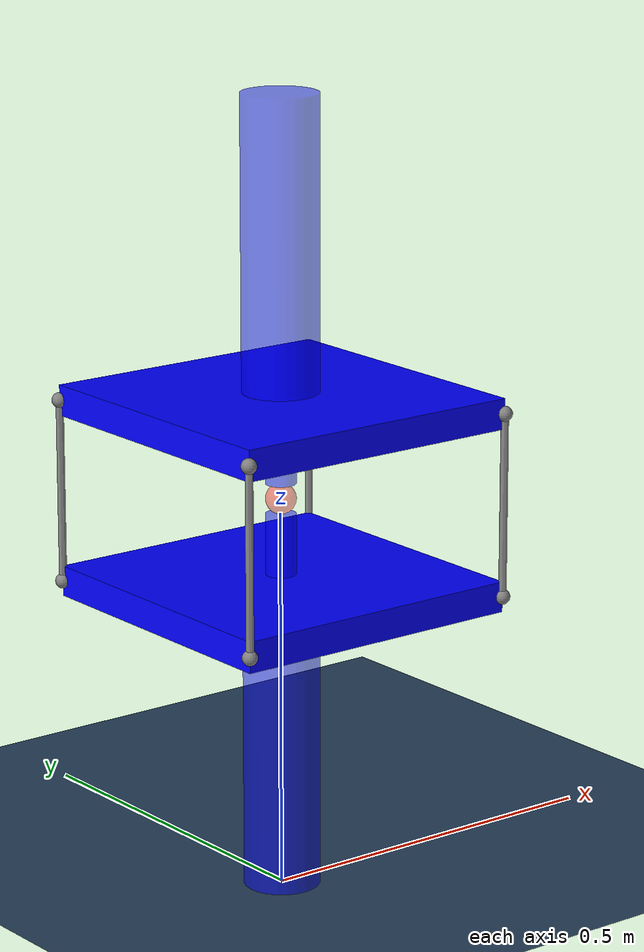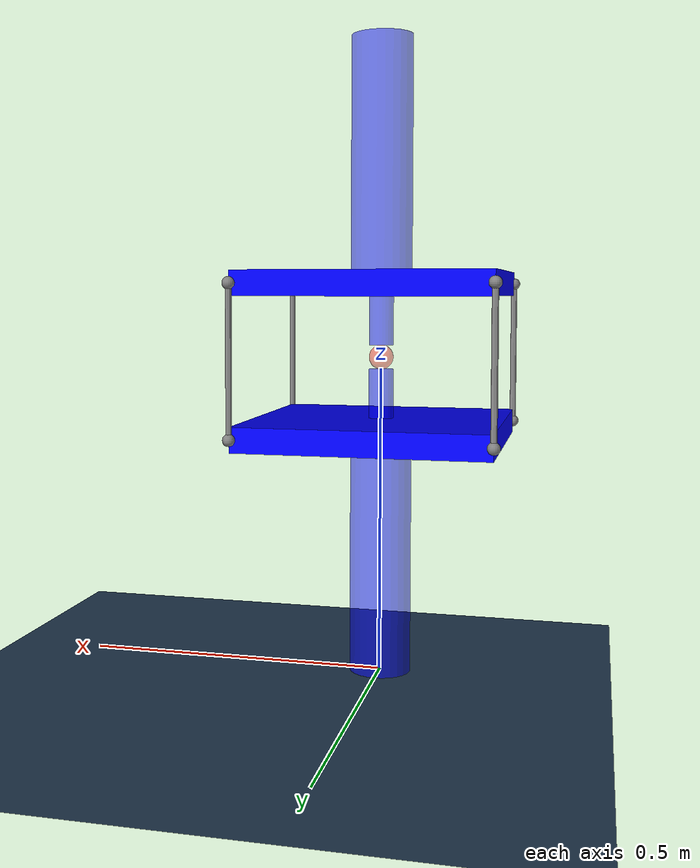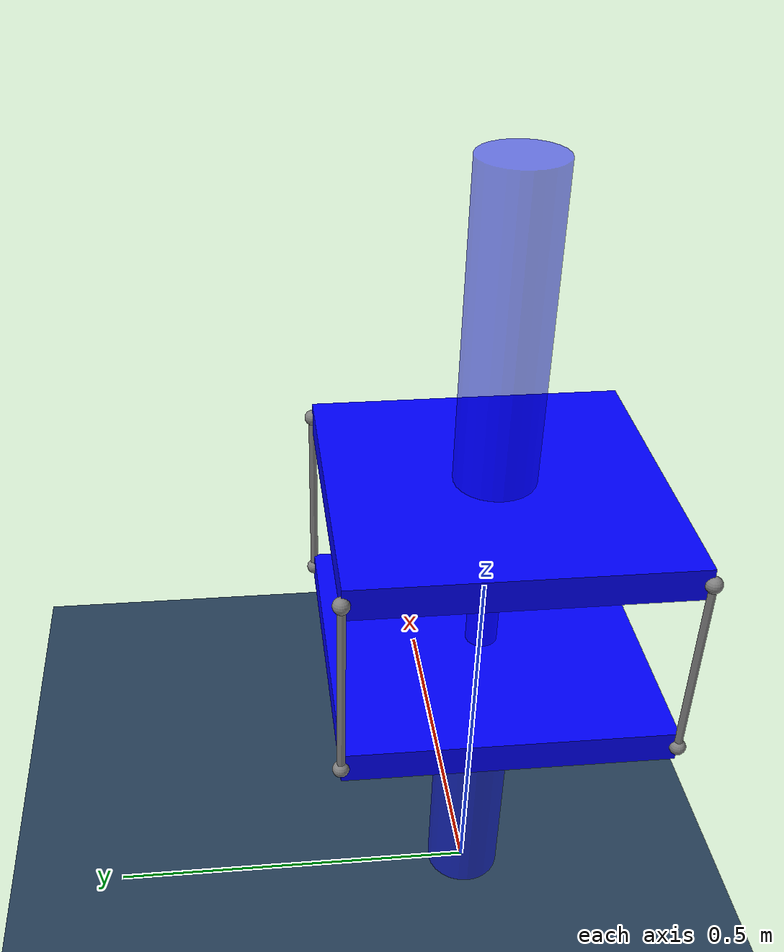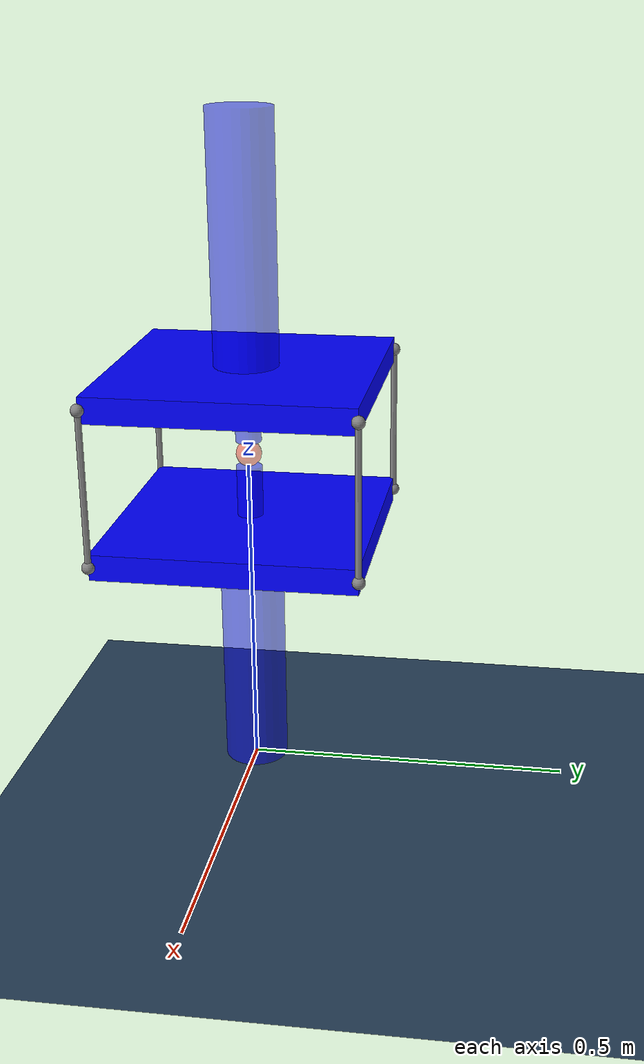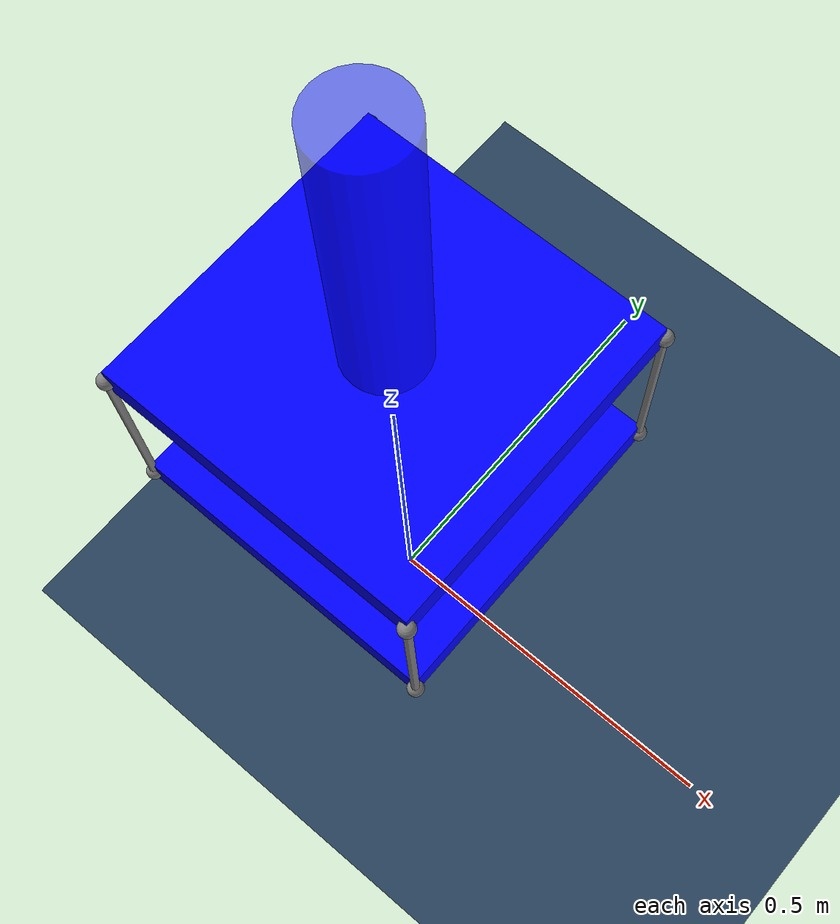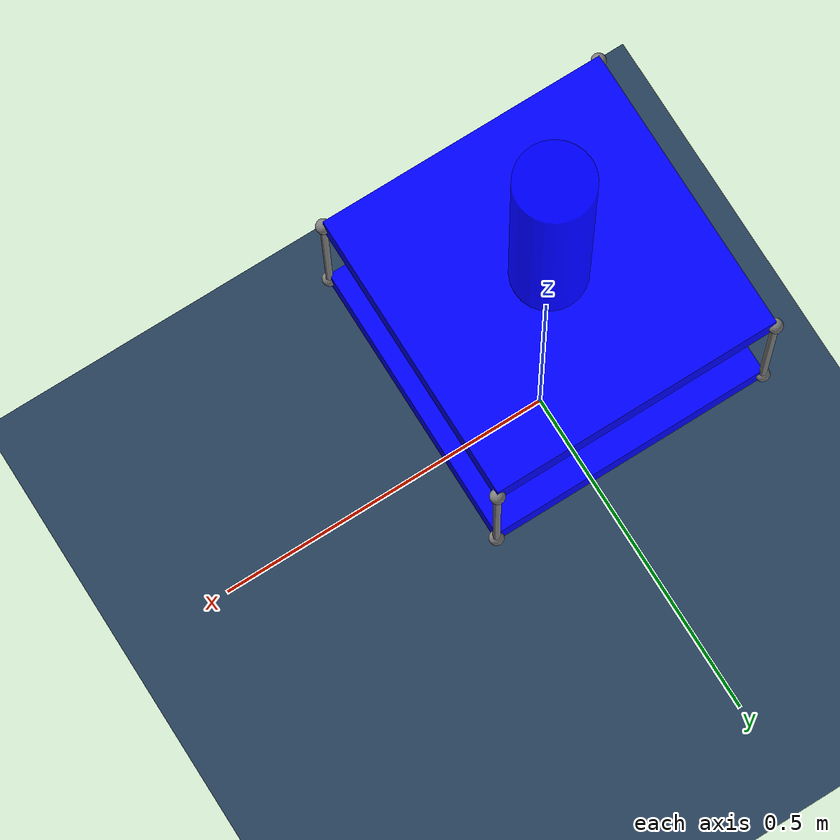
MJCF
<mujoco model="disk scene">
  <statistic center="-0.4 -0.4 0.2" extent="1.2"/>
  <visual>
    <headlight diffuse="0.6 0.6 0.6"  ambient="0.3 0.3 0.3" specular="0 0 0"/>
    <rgba haze="0.15 0.25 0.35 1"/>
    <global azimuth="170" elevation="-10" offheight="1024" offwidth="1024" />
    <map znear="0.01"/>
  </visual>
  <asset>
    <texture type="skybox" builtin="gradient" rgb1="0.3 0.5 0.7" rgb2="0 0 0" width="512"
          height="3072"/>
    <texture type="2d" name="groundplane" builtin="checker" mark="edge" rgb1="0.2 0.3 0.4"
          rgb2="0.1 0.2 0.3" markrgb="0.8 0.8 0.8" width="300" height="300"/>
    <material name="groundplane" texture="groundplane" texuniform="true" texrepeat="5 5"
          reflectance="0.2"/>
    <material name="bone" reflectance="1" shininess="0" specular="0" rgba="0.68 0.64 0.57 1"/>
  </asset>
  <default>
    <default class="collision">
      <geom type="mesh" contype="3" conaffinity="2" group="0" friction="0.7" solref="0.015 1" solimp="0.95 0.99 0.003" rgba="0.68 0.64 0.57 0.0"/>
    </default>
    <default class="visual">
      <geom type="mesh" contype="0" conaffinity="0" group="2" material="bone" rgba="0.68 0.64 0.57 0.6"/>
    </default>
    <default class="tracker">
      <geom type="mesh" contype="0" conaffinity="0" group="2" rgba="0.2 0.2 1 0.2"/>
    </default>
  </default>
  <worldbody>
    <light pos="0 0 1.5" dir="0 0 -1" directional="true"/>
    <geom name="floor" size="0 0 0.05" type="plane" material="groundplane"/>
  </worldbody>
  <include file="./disk_model.xml"/>
</mujoco>

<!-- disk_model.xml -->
<mujoco model="disk model">
    <option gravity="0 0 -9.81" />

    <!-- This is our texture -->
    <asset>
        <material name="white" rgba="1 1 1 1" />
    </asset>

    <worldbody>
        <!-- settings -->
        <camera name="cam0" pos="0 -1.8 -5" euler="90 0 0" mode="trackcom" />

        <!-- lower zylinder -->
        <body name="lower zylinder" pos="0 0 .2" euler="0 0 0">

            <geom type="cylinder" size=".05 .2" rgba="0 0 1 0.5" />
            <inertial pos="0 0 0" mass="1" diaginertia=".01 .01 .01" />

            <!-- lower plate -->
            <body name="lower plate" pos="0 0 .2" euler="0 0 0">
                <inertial pos="0 0 0" mass="1" diaginertia=".01 .01 .01" />
                <geom type="box" size=".2 .2 .02" rgba="0 0 1 1" />

                <site name="tendon 1 start" pos="0.2 0.2 0" type="sphere" size="0.01" />
                <site name="tendon 2 start" pos="-0.2 -0.2 0" type="sphere" size="0.01" />
                <site name="tendon 3 start" pos=" 0.2 -0.2 0" type="sphere" size="0.01" />
                <site name="tendon 4 start" pos="-0.2  0.2 0" type="sphere" size="0.01" />

                <!-- lower middle zylinder -->
                <body name="lower middle zylinder" pos="0 0 .05" quat="1 0 0 0">
                    <geom type="cylinder" size=".02 .05" rgba="0 0 1 0.5" />
                    <inertial pos="0 0 0" mass="1" diaginertia=".01 .01 .01" />

                    <!-- center ball -->
                    <body name="center ball" pos="0 0 .07" euler="0 0 0">

                        <inertial pos="0 0 0" mass="1" diaginertia=".01 .01 .01" />
                        <geom type="sphere" size=".02 " rgba="1 0 0 .4" />
                        <joint type="ball" pos="0 0 0" />

                        <!-- upper middle zylinder -->
                        <body name="upper middle zylinder" pos="0 0 .07" quat="1 0 0 0">

                            <geom type="cylinder" size=".02 .05" rgba="0 0 1 0.5" />
                            <inertial pos="0 0 0" mass="1" diaginertia=".01 .01 .01" />

                            <!-- upper plate -->
                            <body name="upper plate" pos="0 0 .05" euler="0 0 0">
                                <inertial pos="0 0 0" mass="1" diaginertia=".01 .01 .01" />
                                <geom type="box" size=".2 .2 .02" rgba="0 0 1 1" />

                                <site name="tendon 1 end" pos="0.2 0.2 0" type="sphere" size="0.01" />
                                <site name="tendon 2 end" pos="-0.2 -0.2 0" type="sphere" size="0.01" />
                                <site name="tendon 3 end" pos="0.2 -0.2 0" type="sphere" size="0.01" />
                                <site name="tendon 4 end" pos="-0.2 0.2 0" type="sphere" size="0.01" />

                                <!-- upper zylinder -->
                                <body name="upper zylinder" pos="0 0 .2" euler="0 0 0">

                                    <geom type="cylinder" size=".05 .2" rgba="0 0 1 0.5" />
                                    <inertial pos="0 0 0" mass="1" diaginertia=".01 .01 .01" />
                                </body>
                            </body>
                        </body>
                    </body>
                </body>
            </body>
        </body>
    </worldbody>

    <!-- tendons -->
    <tendon>
        <spatial limited="true" range="0 0.5" width="0.005" stiffness="100" damping="100">
            <site site="tendon 1 start" />
            <site site="tendon 1 end" />
        </spatial>

        <spatial limited="true" range="0 0.5" width="0.005" stiffness="100" damping="100">
            <site site="tendon 2 start" />
            <site site="tendon 2 end" />
        </spatial>

        <spatial limited="true" range="0 0.5" width="0.005" stiffness="100" damping="100">
            <site site="tendon 3 start" />
            <site site="tendon 3 end" />
        </spatial>

        <spatial limited="true" range="0 0.5" width="0.005" stiffness="100" damping="100">
            <site site="tendon 4 start" />
            <site site="tendon 4 end" />
        </spatial>

    </tendon>

</mujoco>
